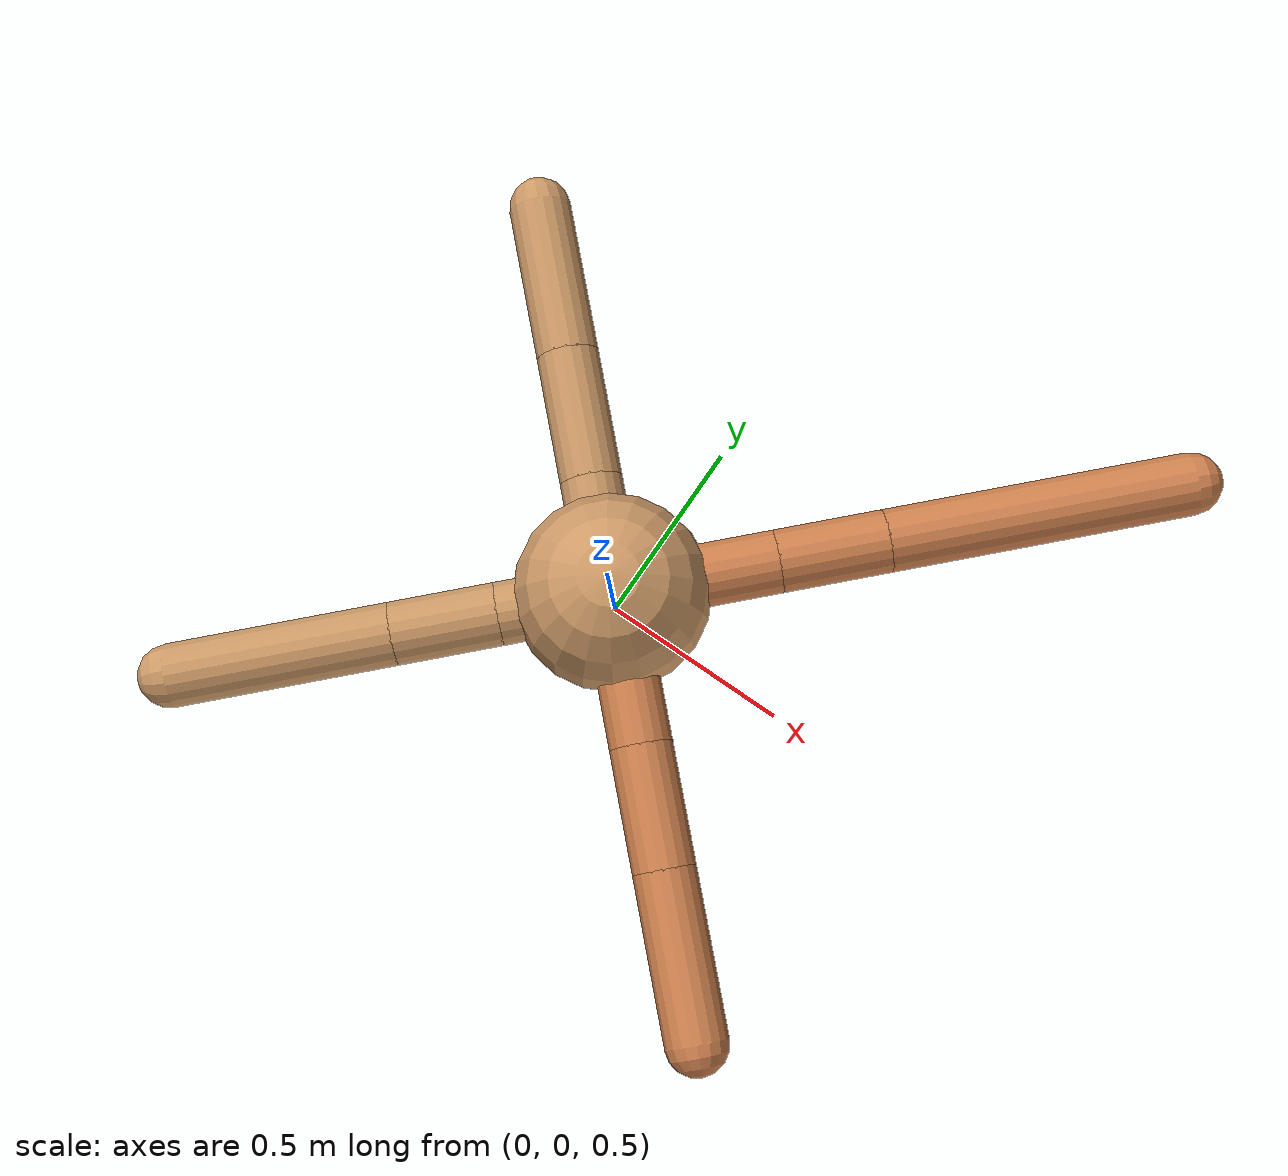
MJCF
<mujoco model="ant">
  <compiler angle="degree" coordinate="local" inertiafromgeom="true" />
  <option integrator="RK4" timestep="0.01" />
  <custom>
    <numeric data="0.0 0.0 0.55 1.0 0.0 0.0 0.0 0.0 1.0 0.0 -1.0 0.0 -1.0 0.0 1.0" name="init_qpos" />
  </custom>
  <default>
    <joint armature="1" damping="1" limited="true" />
    <geom conaffinity="0" condim="3" density="5.0" friction="1.5 0.1 0.1" margin="0.01" rgba="0.8 0.6 0.4 1" />
  </default>
  <worldbody>
    <body name="torso" pos="0 0 0.75">
      <geom name="torso_geom" pos="0 0 0" size="0.25" type="sphere" />

      <body name="front_left_leg" pos="0 0 0">
        <geom fromto="0.0 0.0 0.0 0.29791018448782397 0.29791018448782397 0.0" name="aux_1_geom" size="0.08" type="capsule" rgba=".8 .5 .3 1" />
        <body name="aux_1" pos="0.29791018448782397 0.29791018448782397 0.0">
          <joint axis="0 0 1" name="hip_1" pos="0.0 0.0 0.0" range="-40 40" type="hinge" />
          <geom fromto="0.0 0.0 0.0 0.19723580099070792 0.19723580099070792 0.0" name="left_leg_geom" size="0.08" type="capsule" rgba=".8 .5 .3 1" />
          <body pos="0.19723580099070792 0.19723580099070792 0.0" name="front_left_foot">
            <joint axis="-1 1 0" name="ankle_1" pos="0.0 0.0 0.0" range="30 100" type="hinge" />
            <geom fromto="0.0 0.0 0.0 0.5536863311315304 0.5536863311315304 0.0" name="left_ankle_geom" size="0.08" type="capsule" rgba=".8 .5 .3 1" />
          </body>
        </body>
      </body>
      <body name="front_right_leg" pos="0 0 0">
        <geom fromto="0.0 0.0 0.0 -0.2068230045228944 0.2068230045228944 0.0" name="aux_2_geom" size="0.08" type="capsule" />
        <body name="aux_2" pos="-0.2068230045228944 0.2068230045228944 0.0">
          <joint axis="0 0 1" name="hip_2" pos="0.0 0.0 0.0" range="-40 40" type="hinge" />
          <geom fromto="0.0 0.0 0.0 -0.23576962466766674 0.23576962466766674 0.0" name="right_leg_geom" size="0.08" type="capsule" />
          <body pos="-0.23576962466766674 0.23576962466766674 0.0" name="front_right_foot">
            <joint axis="1 1 0" name="ankle_2" pos="0.0 0.0 0.0" range="-100 -30" type="hinge" />
            <geom fromto="0.0 0.0 0.0 -0.2835924922083076 0.2835924922083076 0.0" name="right_ankle_geom" size="0.08" type="capsule" />
          </body>
        </body>
      </body>
      <body name="left_back_leg" pos="0 0 0">
        <geom fromto="0.0 0.0 0.0 -0.20294011634679185 -0.20294011634679185 0.0" name="aux_3_geom" size="0.08" type="capsule" />
        <body name="aux_3" pos="-0.20294011634679185 -0.20294011634679185 0.0">
          <joint axis="0 0 1" name="hip_3" pos="0.0 0.0 0.0" range="-40 40" type="hinge" />
          <geom fromto="0.0 0.0 0.0 -0.18841907836403995 -0.18841907836403995 0.0" name="back_leg_geom" size="0.08" type="capsule" />
          <body pos="-0.18841907836403995 -0.18841907836403995 0.0" name="left_back_foot">
            <joint axis="-1 1 0" name="ankle_3" pos="0.0 0.0 0.0" range="-100 -30" type="hinge" />
            <geom fromto="0.0 0.0 0.0 -0.3963026579121851 -0.3963026579121851 0.0" name="third_ankle_geom" size="0.08" type="capsule" />
          </body>
        </body>
      </body>
      <body name="right_back_leg" pos="0 0 0">
        <geom fromto="0.0 0.0 0.0 0.27647831168098824 -0.27647831168098824 0.0" name="aux_4_geom" size="0.08" type="capsule" rgba=".8 .5 .3 1" />
        <body name="aux_4" pos="0.27647831168098824 -0.27647831168098824 0.0">
          <joint axis="0 0 1" name="hip_4" pos="0.0 0.0 0.0" range="-40 40" type="hinge" />
          <geom fromto="0.0 0.0 0.0 0.21853267688883424 -0.21853267688883424 0.0" name="rightback_leg_geom" size="0.08" type="capsule" rgba=".8 .5 .3 1" />
          <body pos="0.21853267688883424 -0.21853267688883424 0.0" name="right_back_foot">
            <joint axis="1 1 0" name="ankle_4" pos="0.0 0.0 0.0" range="30 100" type="hinge" />
            <geom fromto="0.0 0.0 0.0 0.2982060844953182 -0.2982060844953182 0.0" name="fourth_ankle_geom" size="0.08" type="capsule" rgba=".8 .5 .3 1" />
          </body>
        </body>
      </body>
    </body>
  </worldbody>
  <actuator>
    <motor ctrllimited="true" ctrlrange="-1.0 1.0" joint="hip_4" gear="150" />
    <motor ctrllimited="true" ctrlrange="-1.0 1.0" joint="ankle_4" gear="150" />
    <motor ctrllimited="true" ctrlrange="-1.0 1.0" joint="hip_1" gear="150" />
    <motor ctrllimited="true" ctrlrange="-1.0 1.0" joint="ankle_1" gear="150" />
    <motor ctrllimited="true" ctrlrange="-1.0 1.0" joint="hip_2" gear="150" />
    <motor ctrllimited="true" ctrlrange="-1.0 1.0" joint="ankle_2" gear="150" />
    <motor ctrllimited="true" ctrlrange="-1.0 1.0" joint="hip_3" gear="150" />
    <motor ctrllimited="true" ctrlrange="-1.0 1.0" joint="ankle_3" gear="150" />
  </actuator>
</mujoco>
